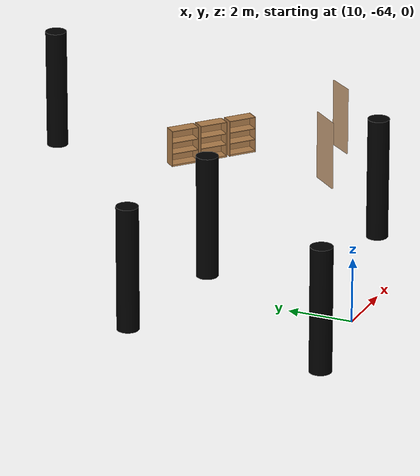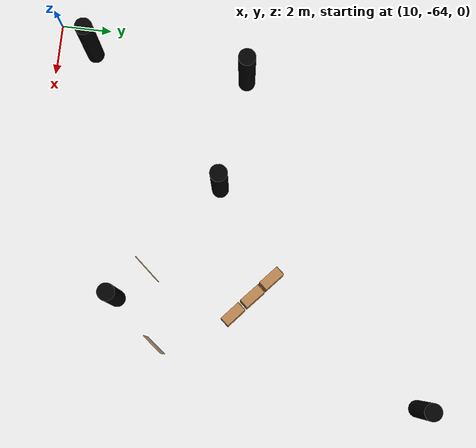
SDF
<sdf version="1.7">
 <world name="world">
  <model name="OpenRobotics/Bookshelf">
   <static>1</static>
   <link name="link">
    <inertial><mass>1</mass></inertial>
    <collision name="back">
     <pose>0 0.005 0.6 0 -0 0</pose>
     <geometry><box><size>0.9 0.01 1.2</size></box></geometry>
    </collision>
    <visual name="visual1">
     <pose>0 0.005 0.6 0 -0 0</pose>
     <geometry><box><size>0.9 0.01 1.2</size></box></geometry>
     <material>
      <script><uri>file://media/materials/scripts/gazebo.material</uri><name>Gazebo/Wood</name></script>
     </material>
    </visual>
    <collision name="left_side">
     <pose>0.45 -0.195 0.6 0 -0 0</pose>
     <geometry><box><size>0.02 0.4 1.2</size></box></geometry>
    </collision>
    <visual name="visual2">
     <pose>0.45 -0.195 0.6 0 -0 0</pose>
     <geometry><box><size>0.02 0.4 1.2</size></box></geometry>
     <material>
      <script><uri>file://media/materials/scripts/gazebo.material</uri><name>Gazebo/Wood</name></script>
     </material>
    </visual>
    <collision name="right_side">
     <pose>-0.45 -0.195 0.6 0 -0 0</pose>
     <geometry><box><size>0.02 0.4 1.2</size></box></geometry>
    </collision>
    <visual name="visual3">
     <pose>-0.45 -0.195 0.6 0 -0 0</pose>
     <geometry><box><size>0.02 0.4 1.2</size></box></geometry>
     <material>
      <script><uri>file://media/materials/scripts/gazebo.material</uri><name>Gazebo/Wood</name></script>
     </material>
    </visual>
    <collision name="bottom">
     <pose>0 -0.195 0.03 0 -0 0</pose>
     <geometry><box><size>0.88 0.4 0.06</size></box></geometry>
    </collision>
    <visual name="visual4">
     <pose>0 -0.195 0.03 0 -0 0</pose>
     <geometry><box><size>0.88 0.4 0.06</size></box></geometry>
     <material>
      <script><uri>file://media/materials/scripts/gazebo.material</uri><name>Gazebo/Wood</name></script>
     </material>
    </visual>
    <collision name="top">
     <pose>0 -0.195 1.19 0 -0 0</pose>
     <geometry><box><size>0.88 0.4 0.02</size></box></geometry>
    </collision>
    <visual name="visual5">
     <pose>0 -0.195 1.19 0 -0 0</pose>
     <geometry><box><size>0.88 0.4 0.02</size></box></geometry>
     <material>
      <script><uri>file://media/materials/scripts/gazebo.material</uri><name>Gazebo/Wood</name></script>
     </material>
    </visual>
    <collision name="low_shelf">
     <pose>0 -0.195 0.43 0 -0 0</pose>
     <geometry><box><size>0.88 0.4 0.02</size></box></geometry>
    </collision>
    <visual name="visual6">
     <pose>0 -0.195 0.43 0 -0 0</pose>
     <geometry><box><size>0.88 0.4 0.02</size></box></geometry>
     <material>
      <script><uri>file://media/materials/scripts/gazebo.material</uri><name>Gazebo/Wood</name></script>
     </material>
    </visual>
    <collision name="high_shelf">
     <pose>0 -0.195 0.8 0 -0 0</pose>
     <geometry><box><size>0.88 0.4 0.02</size></box></geometry>
    </collision>
    <visual name="visual7">
     <pose>0 -0.195 0.8 0 -0 0</pose>
     <geometry><box><size>0.88 0.4 0.02</size></box></geometry>
     <material>
      <script><uri>file://media/materials/scripts/gazebo.material</uri><name>Gazebo/Wood</name></script>
     </material>
    </visual>
   </link>
   <pose>19.4161 -54.2992 0 0 0 -0.7204</pose>
  </model>
  <model name="OpenRobotics/Bookshelf_2">
   <static>1</static>
   <link name="link">
    <inertial><mass>1</mass></inertial>
    <collision name="back">
     <pose>0 0.005 0.6 0 -0 0</pose>
     <geometry><box><size>0.9 0.01 1.2</size></box></geometry>
    </collision>
    <visual name="visual1">
     <pose>0 0.005 0.6 0 -0 0</pose>
     <geometry><box><size>0.9 0.01 1.2</size></box></geometry>
     <material>
      <script><uri>file://media/materials/scripts/gazebo.material</uri><name>Gazebo/Wood</name></script>
     </material>
    </visual>
    <collision name="left_side">
     <pose>0.45 -0.195 0.6 0 -0 0</pose>
     <geometry><box><size>0.02 0.4 1.2</size></box></geometry>
    </collision>
    <visual name="visual2">
     <pose>0.45 -0.195 0.6 0 -0 0</pose>
     <geometry><box><size>0.02 0.4 1.2</size></box></geometry>
     <material>
      <script><uri>file://media/materials/scripts/gazebo.material</uri><name>Gazebo/Wood</name></script>
     </material>
    </visual>
    <collision name="right_side">
     <pose>-0.45 -0.195 0.6 0 -0 0</pose>
     <geometry><box><size>0.02 0.4 1.2</size></box></geometry>
    </collision>
    <visual name="visual3">
     <pose>-0.45 -0.195 0.6 0 -0 0</pose>
     <geometry><box><size>0.02 0.4 1.2</size></box></geometry>
     <material>
      <script><uri>file://media/materials/scripts/gazebo.material</uri><name>Gazebo/Wood</name></script>
     </material>
    </visual>
    <collision name="bottom">
     <pose>0 -0.195 0.03 0 -0 0</pose>
     <geometry><box><size>0.88 0.4 0.06</size></box></geometry>
    </collision>
    <visual name="visual4">
     <pose>0 -0.195 0.03 0 -0 0</pose>
     <geometry><box><size>0.88 0.4 0.06</size></box></geometry>
     <material>
      <script><uri>file://media/materials/scripts/gazebo.material</uri><name>Gazebo/Wood</name></script>
     </material>
    </visual>
    <collision name="top">
     <pose>0 -0.195 1.19 0 -0 0</pose>
     <geometry><box><size>0.88 0.4 0.02</size></box></geometry>
    </collision>
    <visual name="visual5">
     <pose>0 -0.195 1.19 0 -0 0</pose>
     <geometry><box><size>0.88 0.4 0.02</size></box></geometry>
     <material>
      <script><uri>file://media/materials/scripts/gazebo.material</uri><name>Gazebo/Wood</name></script>
     </material>
    </visual>
    <collision name="low_shelf">
     <pose>0 -0.195 0.43 0 -0 0</pose>
     <geometry><box><size>0.88 0.4 0.02</size></box></geometry>
    </collision>
    <visual name="visual6">
     <pose>0 -0.195 0.43 0 -0 0</pose>
     <geometry><box><size>0.88 0.4 0.02</size></box></geometry>
     <material>
      <script><uri>file://media/materials/scripts/gazebo.material</uri><name>Gazebo/Wood</name></script>
     </material>
    </visual>
    <collision name="high_shelf">
     <pose>0 -0.195 0.8 0 -0 0</pose>
     <geometry><box><size>0.88 0.4 0.02</size></box></geometry>
    </collision>
    <visual name="visual7">
     <pose>0 -0.195 0.8 0 -0 0</pose>
     <geometry><box><size>0.88 0.4 0.02</size></box></geometry>
     <material>
      <script><uri>file://media/materials/scripts/gazebo.material</uri><name>Gazebo/Wood</name></script>
     </material>
    </visual>
   </link>
   <pose>20.1799 -54.9462 0 0 0 -0.7282</pose>
  </model>
  <model name="OpenRobotics/Bookshelf_3">
   <static>1</static>
   <link name="link">
    <inertial><mass>1</mass></inertial>
    <collision name="back">
     <pose>0 0.005 0.6 0 -0 0</pose>
     <geometry><box><size>0.9 0.01 1.2</size></box></geometry>
    </collision>
    <visual name="visual1">
     <pose>0 0.005 0.6 0 -0 0</pose>
     <geometry><box><size>0.9 0.01 1.2</size></box></geometry>
     <material>
      <script><uri>file://media/materials/scripts/gazebo.material</uri><name>Gazebo/Wood</name></script>
     </material>
    </visual>
    <collision name="left_side">
     <pose>0.45 -0.195 0.6 0 -0 0</pose>
     <geometry><box><size>0.02 0.4 1.2</size></box></geometry>
    </collision>
    <visual name="visual2">
     <pose>0.45 -0.195 0.6 0 -0 0</pose>
     <geometry><box><size>0.02 0.4 1.2</size></box></geometry>
     <material>
      <script><uri>file://media/materials/scripts/gazebo.material</uri><name>Gazebo/Wood</name></script>
     </material>
    </visual>
    <collision name="right_side">
     <pose>-0.45 -0.195 0.6 0 -0 0</pose>
     <geometry><box><size>0.02 0.4 1.2</size></box></geometry>
    </collision>
    <visual name="visual3">
     <pose>-0.45 -0.195 0.6 0 -0 0</pose>
     <geometry><box><size>0.02 0.4 1.2</size></box></geometry>
     <material>
      <script><uri>file://media/materials/scripts/gazebo.material</uri><name>Gazebo/Wood</name></script>
     </material>
    </visual>
    <collision name="bottom">
     <pose>0 -0.195 0.03 0 -0 0</pose>
     <geometry><box><size>0.88 0.4 0.06</size></box></geometry>
    </collision>
    <visual name="visual4">
     <pose>0 -0.195 0.03 0 -0 0</pose>
     <geometry><box><size>0.88 0.4 0.06</size></box></geometry>
     <material>
      <script><uri>file://media/materials/scripts/gazebo.material</uri><name>Gazebo/Wood</name></script>
     </material>
    </visual>
    <collision name="top">
     <pose>0 -0.195 1.19 0 -0 0</pose>
     <geometry><box><size>0.88 0.4 0.02</size></box></geometry>
    </collision>
    <visual name="visual5">
     <pose>0 -0.195 1.19 0 -0 0</pose>
     <geometry><box><size>0.88 0.4 0.02</size></box></geometry>
     <material>
      <script><uri>file://media/materials/scripts/gazebo.material</uri><name>Gazebo/Wood</name></script>
     </material>
    </visual>
    <collision name="low_shelf">
     <pose>0 -0.195 0.43 0 -0 0</pose>
     <geometry><box><size>0.88 0.4 0.02</size></box></geometry>
    </collision>
    <visual name="visual6">
     <pose>0 -0.195 0.43 0 -0 0</pose>
     <geometry><box><size>0.88 0.4 0.02</size></box></geometry>
     <material>
      <script><uri>file://media/materials/scripts/gazebo.material</uri><name>Gazebo/Wood</name></script>
     </material>
    </visual>
    <collision name="high_shelf">
     <pose>0 -0.195 0.8 0 -0 0</pose>
     <geometry><box><size>0.88 0.4 0.02</size></box></geometry>
    </collision>
    <visual name="visual7">
     <pose>0 -0.195 0.8 0 -0 0</pose>
     <geometry><box><size>0.88 0.4 0.02</size></box></geometry>
     <material>
      <script><uri>file://media/materials/scripts/gazebo.material</uri><name>Gazebo/Wood</name></script>
     </material>
    </visual>
   </link>
   <pose>20.9437 -55.604 0 0 0 -0.7114</pose>
  </model>
  <model name="D48">
   <pose>22.3302 -58.5926 0 -0 -0 -2.24159</pose>
   <link name="right">
    <pose>0 0 1.11 0 -0 0</pose>
    <visual name="right_visual">
     <geometry><box><size>0.932179 0.03 2.2</size></box></geometry>
     <material><ambient>0.5 0.25 0 0.6</ambient><diffuse>0.5 0.25 0 0.6</diffuse></material>
    </visual>
    <collision name="right_collision">
     <geometry><box><size>0.932179 0.03 2.2</size></box></geometry>
     <surface><contact><collide_bitmask>2</collide_bitmask></contact></surface>
    </collision>
    <inertial>
     <mass>50</mass>
     <inertia><ixx>20.1704</ixx><iyy>23.7873</iyy><izz>3.62441</izz><ixy>0</ixy><ixz>0</ixz><iyz>0</iyz></inertia>
    </inertial>
   </link>
   <joint name="right_joint" type="revolute">
    <parent>world</parent>
    <child>right</child>
    <axis>
     <xyz>0 0 -1</xyz>
     <limit><lower>0</lower><upper>1.57</upper></limit>
     <dynamics><spring_reference>0</spring_reference><spring_stiffness>0</spring_stiffness></dynamics>
    </axis>
    <pose>0.47109 0 0 0 -0 0</pose>
   </joint>
   <plugin name="door_D48" filename="libdoor.so">
    <v_max_door>0.5</v_max_door>
    <a_max_door>0.3</a_max_door>
    <a_nom_door>0.15</a_nom_door>
    <dx_min_door>0.01</dx_min_door>
    <f_max_door>500.0</f_max_door>
    <door name="D48" type="SwingDoor" left_joint_name="empty_joint" right_joint_name="right_joint"/>
   </plugin>
  </model>
  <model name="D49">
   <pose>19.5017 -59.2239 0 -0 -0 -2.2891</pose>
   <link name="right">
    <pose>0 0 1.11 0 -0 0</pose>
    <visual name="right_visual">
     <geometry><box><size>1.08767 0.03 2.2</size></box></geometry>
     <material><ambient>0.5 0.25 0 0.6</ambient><diffuse>0.5 0.25 0 0.6</diffuse></material>
    </visual>
    <collision name="right_collision">
     <geometry><box><size>1.08767 0.03 2.2</size></box></geometry>
     <surface><contact><collide_bitmask>2</collide_bitmask></contact></surface>
    </collision>
    <inertial>
     <mass>50</mass>
     <inertia><ixx>20.1704</ixx><iyy>25.096</iyy><izz>4.93307</izz><ixy>0</ixy><ixz>0</ixz><iyz>0</iyz></inertia>
    </inertial>
   </link>
   <joint name="right_joint" type="revolute">
    <parent>world</parent>
    <child>right</child>
    <axis>
     <xyz>0 0 1</xyz>
     <limit><lower>0</lower><upper>1.57</upper></limit>
     <dynamics><spring_reference>0</spring_reference><spring_stiffness>0</spring_stiffness></dynamics>
    </axis>
    <pose>0.548837 0 0 0 -0 0</pose>
   </joint>
   <plugin name="door_D49" filename="libdoor.so">
    <v_max_door>0.5</v_max_door>
    <a_max_door>0.3</a_max_door>
    <a_nom_door>0.15</a_nom_door>
    <dx_min_door>0.01</dx_min_door>
    <f_max_door>500.0</f_max_door>
    <door name="D49" type="SwingDoor" left_joint_name="empty_joint" right_joint_name="right_joint"/>
   </plugin>
  </model>
  <model name="CylinderBlock_7">
   <link name="link">
    <inertial>
     <mass>1</mass>
     <inertia><ixx>1</ixx><ixy>0</ixy><ixz>0</ixz><iyy>1</iyy><iyz>0</iyz><izz>1</izz></inertia>
    </inertial>
    <visual name="visual">
     <geometry><cylinder><radius>0.35</radius><length>4.0</length></cylinder></geometry>
     <material>
      <shader type="pixel"><normal_map>__default__</normal_map></shader>
      <script><name>ModelPreview_1::link::visual_MATERIAL_</name><uri>__default__</uri></script>
      <ambient>0 0 0 1</ambient>
      <diffuse>0 0 0 1</diffuse>
      <specular>0 0 0 1</specular>
      <emissive>0 0 0 1</emissive>
     </material>
    </visual>
    <collision name="collision">
     <geometry><cylinder><radius>0.35</radius><length>4.0</length></cylinder></geometry>
     <surface>
      <friction>
       <ode><mu>1</mu><mu2>1</mu2><fdir1>0 0 0</fdir1><slip1>0</slip1><slip2>0</slip2></ode>
       <torsional>
        <coefficient>1</coefficient>
        <patch_radius>0</patch_radius>
        <surface_radius>0</surface_radius>
        <use_patch_radius>1</use_patch_radius>
        <ode><slip>0</slip></ode>
       </torsional>
      </friction>
      <bounce><restitution_coefficient>0</restitution_coefficient><threshold>1e+06</threshold></bounce>
      <contact>
       <collide_without_contact>0</collide_without_contact>
       <collide_without_contact_bitmask>1</collide_without_contact_bitmask>
       <collide_bitmask>1</collide_bitmask>
       <ode>
        <soft_cfm>0</soft_cfm>
        <soft_erp>0.2</soft_erp>
        <kp>1e+13</kp>
        <kd>1</kd>
        <max_vel>0.01</max_vel>
        <min_depth>0</min_depth>
       </ode>
       <bullet>
        <split_impulse>1</split_impulse>
        <split_impulse_penetration_threshold>-0.01</split_impulse_penetration_threshold>
        <soft_cfm>0</soft_cfm>
        <soft_erp>0.2</soft_erp>
        <kp>1e+13</kp>
        <kd>1</kd>
       </bullet>
      </contact>
     </surface>
    </collision>
   </link>
   <static>1</static>
   <pose>20.5852 -60.5857 0 0 -0 0</pose>
  </model>
  <model name="CylinderBlock_8">
   <link name="link">
    <inertial>
     <mass>1</mass>
     <inertia><ixx>1</ixx><ixy>0</ixy><ixz>0</ixz><iyy>1</iyy><iyz>0</iyz><izz>1</izz></inertia>
    </inertial>
    <visual name="visual">
     <geometry><cylinder><radius>0.35</radius><length>4.0</length></cylinder></geometry>
     <material>
      <shader type="pixel"><normal_map>__default__</normal_map></shader>
      <script><name>ModelPreview_1::link::visual_MATERIAL_</name><uri>__default__</uri></script>
      <ambient>0 0 0 1</ambient>
      <diffuse>0 0 0 1</diffuse>
      <specular>0 0 0 1</specular>
      <emissive>0 0 0 1</emissive>
     </material>
    </visual>
    <collision name="collision">
     <geometry><cylinder><radius>0.35</radius><length>4.0</length></cylinder></geometry>
     <surface>
      <friction>
       <ode><mu>1</mu><mu2>1</mu2><fdir1>0 0 0</fdir1><slip1>0</slip1><slip2>0</slip2></ode>
       <torsional>
        <coefficient>1</coefficient>
        <patch_radius>0</patch_radius>
        <surface_radius>0</surface_radius>
        <use_patch_radius>1</use_patch_radius>
        <ode><slip>0</slip></ode>
       </torsional>
      </friction>
      <bounce><restitution_coefficient>0</restitution_coefficient><threshold>1e+06</threshold></bounce>
      <contact>
       <collide_without_contact>0</collide_without_contact>
       <collide_without_contact_bitmask>1</collide_without_contact_bitmask>
       <collide_bitmask>1</collide_bitmask>
       <ode>
        <soft_cfm>0</soft_cfm>
        <soft_erp>0.2</soft_erp>
        <kp>1e+13</kp>
        <kd>1</kd>
        <max_vel>0.01</max_vel>
        <min_depth>0</min_depth>
       </ode>
       <bullet>
        <split_impulse>1</split_impulse>
        <split_impulse_penetration_threshold>-0.01</split_impulse_penetration_threshold>
        <soft_cfm>0</soft_cfm>
        <soft_erp>0.2</soft_erp>
        <kp>1e+13</kp>
        <kd>1</kd>
       </bullet>
      </contact>
     </surface>
    </collision>
   </link>
   <static>1</static>
   <pose>15.5992 -56.9194 0 0 -0 0</pose>
  </model>
  <model name="CylinderBlock_11">
   <link name="link">
    <inertial>
     <mass>1</mass>
     <inertia><ixx>1</ixx><ixy>0</ixy><ixz>0</ixz><iyy>1</iyy><iyz>0</iyz><izz>1</izz></inertia>
    </inertial>
    <visual name="visual">
     <geometry><cylinder><radius>0.35</radius><length>4.0</length></cylinder></geometry>
     <material>
      <shader type="pixel"><normal_map>__default__</normal_map></shader>
      <script><name>ModelPreview_1::link::visual_MATERIAL_</name><uri>__default__</uri></script>
      <ambient>0 0 0 1</ambient>
      <diffuse>0 0 0 1</diffuse>
      <specular>0 0 0 1</specular>
      <emissive>0 0 0 1</emissive>
     </material>
    </visual>
    <collision name="collision">
     <geometry><cylinder><radius>0.35</radius><length>4.0</length></cylinder></geometry>
     <surface>
      <friction>
       <ode><mu>1</mu><mu2>1</mu2><fdir1>0 0 0</fdir1><slip1>0</slip1><slip2>0</slip2></ode>
       <torsional>
        <coefficient>1</coefficient>
        <patch_radius>0</patch_radius>
        <surface_radius>0</surface_radius>
        <use_patch_radius>1</use_patch_radius>
        <ode><slip>0</slip></ode>
       </torsional>
      </friction>
      <bounce><restitution_coefficient>0</restitution_coefficient><threshold>1e+06</threshold></bounce>
      <contact>
       <collide_without_contact>0</collide_without_contact>
       <collide_without_contact_bitmask>1</collide_without_contact_bitmask>
       <collide_bitmask>1</collide_bitmask>
       <ode>
        <soft_cfm>0</soft_cfm>
        <soft_erp>0.2</soft_erp>
        <kp>1e+13</kp>
        <kd>1</kd>
        <max_vel>0.01</max_vel>
        <min_depth>0</min_depth>
       </ode>
       <bullet>
        <split_impulse>1</split_impulse>
        <split_impulse_penetration_threshold>-0.01</split_impulse_penetration_threshold>
        <soft_cfm>0</soft_cfm>
        <soft_erp>0.2</soft_erp>
        <kp>1e+13</kp>
        <kd>1</kd>
       </bullet>
      </contact>
     </surface>
    </collision>
   </link>
   <static>1</static>
   <pose>23.5988 -47.9413 0 0 -0 0</pose>
  </model>
  <model name="CylinderBlock_41">
   <link name="link">
    <inertial>
     <mass>1</mass>
     <inertia><ixx>1</ixx><ixy>0</ixy><ixz>0</ixz><iyy>1</iyy><iyz>0</iyz><izz>1</izz></inertia>
    </inertial>
    <visual name="visual">
     <geometry><cylinder><radius>0.35</radius><length>4.0</length></cylinder></geometry>
     <material>
      <shader type="pixel"><normal_map>__default__</normal_map></shader>
      <script><name>ModelPreview_1::link::visual_MATERIAL_</name><uri>__default__</uri></script>
      <ambient>0 0 0 1</ambient>
      <diffuse>0 0 0 1</diffuse>
      <specular>0 0 0 1</specular>
      <emissive>0 0 0 1</emissive>
     </material>
    </visual>
    <collision name="collision">
     <geometry><cylinder><radius>0.35</radius><length>4.0</length></cylinder></geometry>
     <surface>
      <friction>
       <ode><mu>1</mu><mu2>1</mu2><fdir1>0 0 0</fdir1><slip1>0</slip1><slip2>0</slip2></ode>
       <torsional>
        <coefficient>1</coefficient>
        <patch_radius>0</patch_radius>
        <surface_radius>0</surface_radius>
        <use_patch_radius>1</use_patch_radius>
        <ode><slip>0</slip></ode>
       </torsional>
      </friction>
      <bounce><restitution_coefficient>0</restitution_coefficient><threshold>1e+06</threshold></bounce>
      <contact>
       <collide_without_contact>0</collide_without_contact>
       <collide_without_contact_bitmask>1</collide_without_contact_bitmask>
       <collide_bitmask>1</collide_bitmask>
       <ode>
        <soft_cfm>0</soft_cfm>
        <soft_erp>0.2</soft_erp>
        <kp>1e+13</kp>
        <kd>1</kd>
        <max_vel>0.01</max_vel>
        <min_depth>0</min_depth>
       </ode>
       <bullet>
        <split_impulse>1</split_impulse>
        <split_impulse_penetration_threshold>-0.01</split_impulse_penetration_threshold>
        <soft_cfm>0</soft_cfm>
        <soft_erp>0.2</soft_erp>
        <kp>1e+13</kp>
        <kd>1</kd>
       </bullet>
      </contact>
     </surface>
    </collision>
   </link>
   <static>1</static>
   <pose>10.4844 -62.8219 0 0 -0 0</pose>
  </model>
  <model name="CylinderBlock_42">
   <link name="link">
    <inertial>
     <mass>1</mass>
     <inertia><ixx>1</ixx><ixy>0</ixy><ixz>0</ixz><iyy>1</iyy><iyz>0</iyz><izz>1</izz></inertia>
    </inertial>
    <visual name="visual">
     <geometry><cylinder><radius>0.35</radius><length>4.0</length></cylinder></geometry>
     <material>
      <shader type="pixel"><normal_map>__default__</normal_map></shader>
      <script><name>ModelPreview_1::link::visual_MATERIAL_</name><uri>__default__</uri></script>
      <ambient>0 0 0 1</ambient>
      <diffuse>0 0 0 1</diffuse>
      <specular>0 0 0 1</specular>
      <emissive>0 0 0 1</emissive>
     </material>
    </visual>
    <collision name="collision">
     <geometry><cylinder><radius>0.35</radius><length>4.0</length></cylinder></geometry>
     <surface>
      <friction>
       <ode><mu>1</mu><mu2>1</mu2><fdir1>0 0 0</fdir1><slip1>0</slip1><slip2>0</slip2></ode>
       <torsional>
        <coefficient>1</coefficient>
        <patch_radius>0</patch_radius>
        <surface_radius>0</surface_radius>
        <use_patch_radius>1</use_patch_radius>
        <ode><slip>0</slip></ode>
       </torsional>
      </friction>
      <bounce><restitution_coefficient>0</restitution_coefficient><threshold>1e+06</threshold></bounce>
      <contact>
       <collide_without_contact>0</collide_without_contact>
       <collide_without_contact_bitmask>1</collide_without_contact_bitmask>
       <collide_bitmask>1</collide_bitmask>
       <ode>
        <soft_cfm>0</soft_cfm>
        <soft_erp>0.2</soft_erp>
        <kp>1e+13</kp>
        <kd>1</kd>
        <max_vel>0.01</max_vel>
        <min_depth>0</min_depth>
       </ode>
       <bullet>
        <split_impulse>1</split_impulse>
        <split_impulse_penetration_threshold>-0.01</split_impulse_penetration_threshold>
        <soft_cfm>0</soft_cfm>
        <soft_erp>0.2</soft_erp>
        <kp>1e+13</kp>
        <kd>1</kd>
       </bullet>
      </contact>
     </surface>
    </collision>
   </link>
   <static>1</static>
   <pose>10.9598 -56.3593 0 0 -0 0</pose>
  </model>
 </world>
</sdf>
